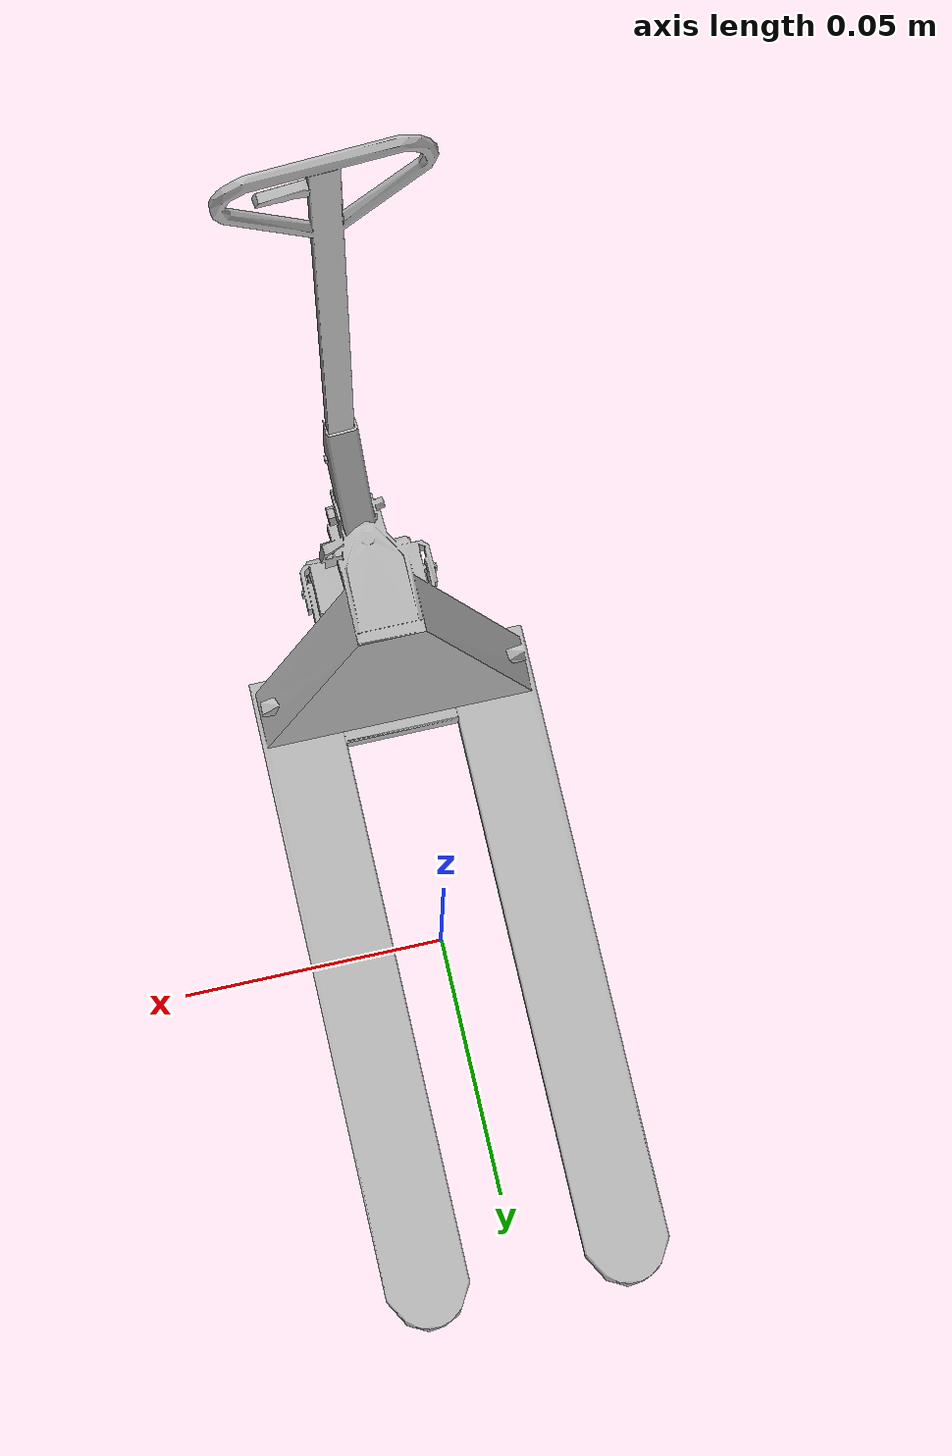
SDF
<?xml version="1.0" ?>
<sdf version="1.6">
  <model name="Hand_Forklift">
    <link name="link">
      <collision name="collision">
        <geometry>
          <mesh>
            <scale>1 1 1</scale>
            <uri>model://Hand_Forklift/meshes/Hand_Forklift.dae</uri>
          </mesh>
        </geometry>
        <max_contacts>10</max_contacts>
          <surface>
            <bounce/>
            <friction>
              <ode>
                <mu>1</mu>
                <mu2>1</mu2>
              </ode>
            </friction>
          </surface>
      </collision>

      <visual name="visual">
        <geometry>
          <mesh>
            <scale>1 1 1</scale>
            <uri>model://Hand_Forklift/meshes/Hand_Forklift.dae</uri>
          </mesh>
        </geometry>
        <material>
          <script>
            <uri>model://Hand_Forklift/materials/scripts</uri>
            <uri>model://Hand_Forklift/materials/textures</uri>
            <name>Hand_Forklift/Diffuse</name>
          </script>
        </material>
      </visual>
      <velocity_decay>
        <linear>0</linear>
        <angular>0</angular>
      </velocity_decay>
      <self_collide>0</self_collide>
      <inertial>
        <inertia>
          <ixx>1</ixx>
          <ixy>0</ixy>
          <ixz>0</ixz>
          <iyy>1</iyy>
          <iyz>0</iyz>
          <izz>1</izz>
        </inertia>
        <mass>1</mass>
      </inertial>
      <kinematic>0</kinematic>
      <gravity>1</gravity>
    </link>
  </model>
</sdf>
